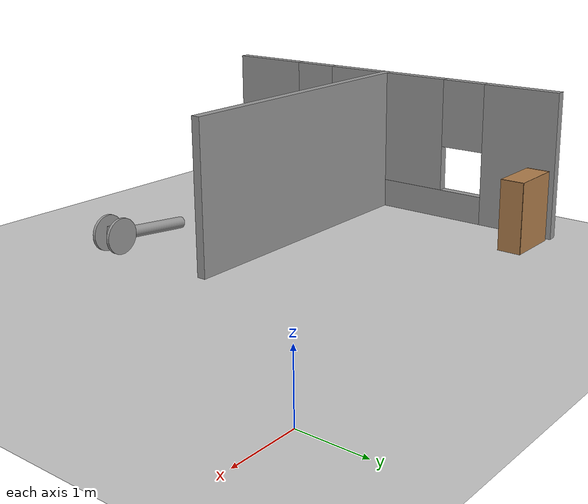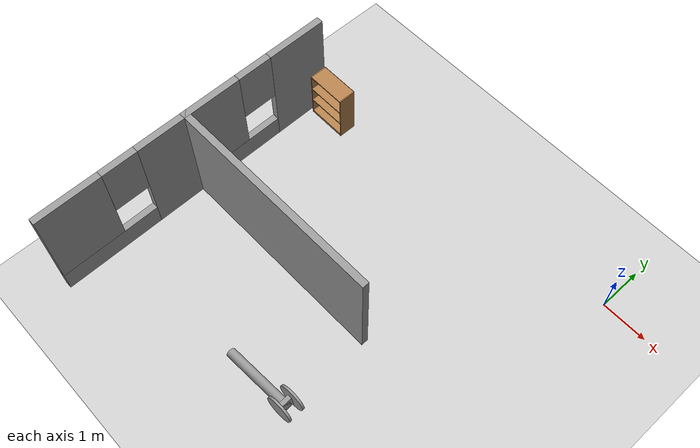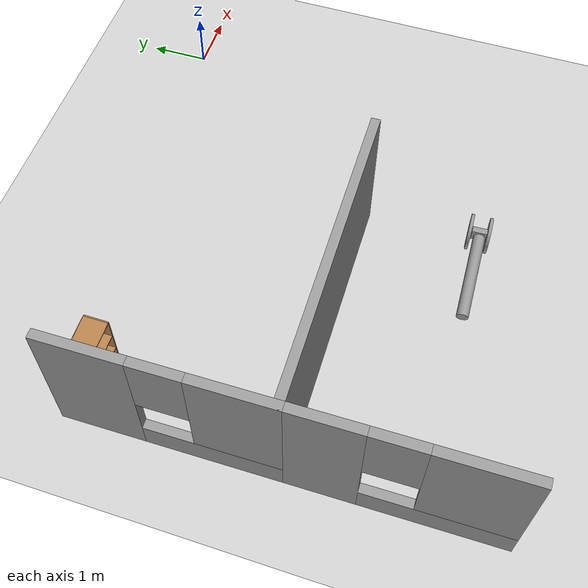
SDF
<sdf version="1.6">
 <world name="default">
  <model name="ground_plane">
   <static>1</static>
   <link name="link">
    <collision name="collision">
     <geometry><plane><normal>0 0 1</normal><size>100 100</size></plane></geometry>
     <surface>
      <contact><collide_bitmask>65535</collide_bitmask></contact>
      <friction><ode><mu>100</mu><mu2>50</mu2></ode></friction>
     </surface>
    </collision>
    <visual name="visual">
     <cast_shadows>0</cast_shadows>
     <geometry><plane><normal>0 0 1</normal><size>100 100</size></plane></geometry>
     <material>
      <script><uri>file://media/materials/scripts/gazebo.material</uri><name>Gazebo/Grey</name></script>
     </material>
    </visual>
   </link>
  </model>
  <model name="Robo-Space.sdf">
   <link name="Wall_1">
    <pose>-6.55 1.675 0 0 0 -1.5708</pose>
    <visual name="Wall_1_Visual_0">
     <pose>-1.0675 0 1.25 0 -0 0</pose>
     <geometry><box><size>1.365 0.15 2.5</size></box></geometry>
     <material>
      <script><uri>file://media/materials/scripts/gazebo.material</uri><name>Gazebo/Grey</name></script>
      <ambient>1 1 1 1</ambient>
      <shader type="pixel"/>
      <diffuse>0.7 0.7 0.7 1</diffuse>
      <specular>0.01 0.01 0.01 1</specular>
      <emissive>0 0 0 1</emissive>
     </material>
     <meta><layer>0</layer></meta>
    </visual>
    <visual name="Wall_1_Visual_1">
     <pose>0.6825 0 0.25 0 -0 0</pose>
     <geometry><box><size>2.135 0.15 0.5</size></box></geometry>
     <material>
      <script><uri>file://media/materials/scripts/gazebo.material</uri><name>Gazebo/Grey</name></script>
      <ambient>1 1 1 1</ambient>
      <shader type="pixel"/>
      <diffuse>0.7 0.7 0.7 1</diffuse>
      <specular>0.01 0.01 0.01 1</specular>
      <emissive>0 0 0 1</emissive>
     </material>
     <meta><layer>0</layer></meta>
    </visual>
    <visual name="Wall_1_Visual_2">
     <pose>1.0825 0 1.5 0 -0 0</pose>
     <geometry><box><size>1.335 0.15 2</size></box></geometry>
     <material>
      <script><uri>file://media/materials/scripts/gazebo.material</uri><name>Gazebo/Grey</name></script>
      <ambient>1 1 1 1</ambient>
      <shader type="pixel"/>
      <diffuse>0.7 0.7 0.7 1</diffuse>
      <specular>0.01 0.01 0.01 1</specular>
      <emissive>0 0 0 1</emissive>
     </material>
     <meta><layer>0</layer></meta>
    </visual>
    <visual name="Wall_1_Visual_3">
     <pose>0.015 0 1.9 0 -0 0</pose>
     <geometry><box><size>0.8 0.15 1.2</size></box></geometry>
     <material>
      <script><uri>file://media/materials/scripts/gazebo.material</uri><name>Gazebo/Grey</name></script>
      <ambient>1 1 1 1</ambient>
      <shader type="pixel"/>
      <diffuse>0.7 0.7 0.7 1</diffuse>
      <specular>0.01 0.01 0.01 1</specular>
      <emissive>0 0 0 1</emissive>
     </material>
     <meta><layer>0</layer></meta>
    </visual>
    <collision name="Wall_1_Collision_0">
     <pose>-1.0675 0 1.25 0 -0 0</pose>
     <geometry><box><size>1.365 0.15 2.5</size></box></geometry>
     <surface>
      <friction>
       <ode><mu>1</mu><mu2>1</mu2><fdir1>0 0 0</fdir1><slip1>0</slip1><slip2>0</slip2></ode>
       <torsional>
        <coefficient>1</coefficient>
        <patch_radius>0</patch_radius>
        <surface_radius>0</surface_radius>
        <use_patch_radius>1</use_patch_radius>
        <ode><slip>0</slip></ode>
       </torsional>
      </friction>
      <bounce><restitution_coefficient>0</restitution_coefficient><threshold>1e+06</threshold></bounce>
      <contact>
       <collide_without_contact>0</collide_without_contact>
       <collide_without_contact_bitmask>1</collide_without_contact_bitmask>
       <collide_bitmask>1</collide_bitmask>
       <ode>
        <soft_cfm>0</soft_cfm>
        <soft_erp>0.2</soft_erp>
        <kp>1e+13</kp>
        <kd>1</kd>
        <max_vel>0.01</max_vel>
        <min_depth>0</min_depth>
       </ode>
       <bullet>
        <split_impulse>1</split_impulse>
        <split_impulse_penetration_threshold>-0.01</split_impulse_penetration_threshold>
        <soft_cfm>0</soft_cfm>
        <soft_erp>0.2</soft_erp>
        <kp>1e+13</kp>
        <kd>1</kd>
       </bullet>
      </contact>
     </surface>
    </collision>
    <collision name="Wall_1_Collision_1">
     <pose>0.6825 0 0.25 0 -0 0</pose>
     <geometry><box><size>2.135 0.15 0.5</size></box></geometry>
     <surface>
      <friction>
       <ode><mu>1</mu><mu2>1</mu2><fdir1>0 0 0</fdir1><slip1>0</slip1><slip2>0</slip2></ode>
       <torsional>
        <coefficient>1</coefficient>
        <patch_radius>0</patch_radius>
        <surface_radius>0</surface_radius>
        <use_patch_radius>1</use_patch_radius>
        <ode><slip>0</slip></ode>
       </torsional>
      </friction>
      <bounce><restitution_coefficient>0</restitution_coefficient><threshold>1e+06</threshold></bounce>
      <contact>
       <collide_without_contact>0</collide_without_contact>
       <collide_without_contact_bitmask>1</collide_without_contact_bitmask>
       <collide_bitmask>1</collide_bitmask>
       <ode>
        <soft_cfm>0</soft_cfm>
        <soft_erp>0.2</soft_erp>
        <kp>1e+13</kp>
        <kd>1</kd>
        <max_vel>0.01</max_vel>
        <min_depth>0</min_depth>
       </ode>
       <bullet>
        <split_impulse>1</split_impulse>
        <split_impulse_penetration_threshold>-0.01</split_impulse_penetration_threshold>
        <soft_cfm>0</soft_cfm>
        <soft_erp>0.2</soft_erp>
        <kp>1e+13</kp>
        <kd>1</kd>
       </bullet>
      </contact>
     </surface>
    </collision>
    <collision name="Wall_1_Collision_2">
     <pose>1.0825 0 1.5 0 -0 0</pose>
     <geometry><box><size>1.335 0.15 2</size></box></geometry>
     <surface>
      <friction>
       <ode><mu>1</mu><mu2>1</mu2><fdir1>0 0 0</fdir1><slip1>0</slip1><slip2>0</slip2></ode>
       <torsional>
        <coefficient>1</coefficient>
        <patch_radius>0</patch_radius>
        <surface_radius>0</surface_radius>
        <use_patch_radius>1</use_patch_radius>
        <ode><slip>0</slip></ode>
       </torsional>
      </friction>
      <bounce><restitution_coefficient>0</restitution_coefficient><threshold>1e+06</threshold></bounce>
      <contact>
       <collide_without_contact>0</collide_without_contact>
       <collide_without_contact_bitmask>1</collide_without_contact_bitmask>
       <collide_bitmask>1</collide_bitmask>
       <ode>
        <soft_cfm>0</soft_cfm>
        <soft_erp>0.2</soft_erp>
        <kp>1e+13</kp>
        <kd>1</kd>
        <max_vel>0.01</max_vel>
        <min_depth>0</min_depth>
       </ode>
       <bullet>
        <split_impulse>1</split_impulse>
        <split_impulse_penetration_threshold>-0.01</split_impulse_penetration_threshold>
        <soft_cfm>0</soft_cfm>
        <soft_erp>0.2</soft_erp>
        <kp>1e+13</kp>
        <kd>1</kd>
       </bullet>
      </contact>
     </surface>
    </collision>
    <collision name="Wall_1_Collision_3">
     <pose>0.015 0 1.9 0 -0 0</pose>
     <geometry><box><size>0.8 0.15 1.2</size></box></geometry>
     <surface>
      <friction>
       <ode><mu>1</mu><mu2>1</mu2><fdir1>0 0 0</fdir1><slip1>0</slip1><slip2>0</slip2></ode>
       <torsional>
        <coefficient>1</coefficient>
        <patch_radius>0</patch_radius>
        <surface_radius>0</surface_radius>
        <use_patch_radius>1</use_patch_radius>
        <ode><slip>0</slip></ode>
       </torsional>
      </friction>
      <bounce><restitution_coefficient>0</restitution_coefficient><threshold>1e+06</threshold></bounce>
      <contact>
       <collide_without_contact>0</collide_without_contact>
       <collide_without_contact_bitmask>1</collide_without_contact_bitmask>
       <collide_bitmask>1</collide_bitmask>
       <ode>
        <soft_cfm>0</soft_cfm>
        <soft_erp>0.2</soft_erp>
        <kp>1e+13</kp>
        <kd>1</kd>
        <max_vel>0.01</max_vel>
        <min_depth>0</min_depth>
       </ode>
       <bullet>
        <split_impulse>1</split_impulse>
        <split_impulse_penetration_threshold>-0.01</split_impulse_penetration_threshold>
        <soft_cfm>0</soft_cfm>
        <soft_erp>0.2</soft_erp>
        <kp>1e+13</kp>
        <kd>1</kd>
       </bullet>
      </contact>
     </surface>
    </collision>
   </link>
   <link name="Wall_2">
    <pose>-4.125 0 0 0 -0 0</pose>
    <visual name="Wall_2_Visual">
     <pose>0 0 1.25 0 -0 0</pose>
     <geometry><box><size>5 0.15 2.5</size></box></geometry>
     <material>
      <script><uri>file://media/materials/scripts/gazebo.material</uri><name>Gazebo/Grey</name></script>
      <ambient>1 1 1 1</ambient>
      <shader type="pixel"/>
      <diffuse>0.7 0.7 0.7 1</diffuse>
      <specular>0.01 0.01 0.01 1</specular>
      <emissive>0 0 0 1</emissive>
     </material>
     <meta><layer>0</layer></meta>
    </visual>
    <collision name="Wall_2_Collision">
     <pose>0 0 1.25 0 -0 0</pose>
     <geometry><box><size>5 0.15 2.5</size></box></geometry>
     <surface>
      <friction>
       <ode><mu>1</mu><mu2>1</mu2><fdir1>0 0 0</fdir1><slip1>0</slip1><slip2>0</slip2></ode>
       <torsional>
        <coefficient>1</coefficient>
        <patch_radius>0</patch_radius>
        <surface_radius>0</surface_radius>
        <use_patch_radius>1</use_patch_radius>
        <ode><slip>0</slip></ode>
       </torsional>
      </friction>
      <bounce><restitution_coefficient>0</restitution_coefficient><threshold>1e+06</threshold></bounce>
      <contact>
       <collide_without_contact>0</collide_without_contact>
       <collide_without_contact_bitmask>1</collide_without_contact_bitmask>
       <collide_bitmask>1</collide_bitmask>
       <ode>
        <soft_cfm>0</soft_cfm>
        <soft_erp>0.2</soft_erp>
        <kp>1e+13</kp>
        <kd>1</kd>
        <max_vel>0.01</max_vel>
        <min_depth>0</min_depth>
       </ode>
       <bullet>
        <split_impulse>1</split_impulse>
        <split_impulse_penetration_threshold>-0.01</split_impulse_penetration_threshold>
        <soft_cfm>0</soft_cfm>
        <soft_erp>0.2</soft_erp>
        <kp>1e+13</kp>
        <kd>1</kd>
       </bullet>
      </contact>
     </surface>
    </collision>
   </link>
   <link name="Wall_9">
    <pose>-6.55 -1.675 0 0 0 -1.5708</pose>
    <visual name="Wall_9_Visual_0">
     <pose>-1.1275 0 1.25 0 -0 0</pose>
     <geometry><box><size>1.245 0.15 2.5</size></box></geometry>
     <material>
      <script><uri>file://media/materials/scripts/gazebo.material</uri><name>Gazebo/Grey</name></script>
      <ambient>1 1 1 1</ambient>
      <shader type="pixel"/>
      <diffuse>0.7 0.7 0.7 1</diffuse>
      <specular>0.01 0.01 0.01 1</specular>
      <emissive>0 0 0 1</emissive>
     </material>
     <meta><layer>0</layer></meta>
    </visual>
    <visual name="Wall_9_Visual_1">
     <pose>0.6225 0 0.25 0 -0 0</pose>
     <geometry><box><size>2.255 0.15 0.5</size></box></geometry>
     <material>
      <script><uri>file://media/materials/scripts/gazebo.material</uri><name>Gazebo/Grey</name></script>
      <ambient>1 1 1 1</ambient>
      <shader type="pixel"/>
      <diffuse>0.7 0.7 0.7 1</diffuse>
      <specular>0.01 0.01 0.01 1</specular>
      <emissive>0 0 0 1</emissive>
     </material>
     <meta><layer>0</layer></meta>
    </visual>
    <visual name="Wall_9_Visual_2">
     <pose>1.0225 0 1.5 0 -0 0</pose>
     <geometry><box><size>1.455 0.15 2</size></box></geometry>
     <material>
      <script><uri>file://media/materials/scripts/gazebo.material</uri><name>Gazebo/Grey</name></script>
      <ambient>1 1 1 1</ambient>
      <shader type="pixel"/>
      <diffuse>0.7 0.7 0.7 1</diffuse>
      <specular>0.01 0.01 0.01 1</specular>
      <emissive>0 0 0 1</emissive>
     </material>
     <meta><layer>0</layer></meta>
    </visual>
    <visual name="Wall_9_Visual_3">
     <pose>-0.105 0 1.9 0 -0 0</pose>
     <geometry><box><size>0.8 0.15 1.2</size></box></geometry>
     <material>
      <script><uri>file://media/materials/scripts/gazebo.material</uri><name>Gazebo/Grey</name></script>
      <ambient>1 1 1 1</ambient>
      <shader type="pixel"/>
      <diffuse>0.7 0.7 0.7 1</diffuse>
      <specular>0.01 0.01 0.01 1</specular>
      <emissive>0 0 0 1</emissive>
     </material>
     <meta><layer>0</layer></meta>
    </visual>
    <collision name="Wall_9_Collision_0">
     <pose>-1.1275 0 1.25 0 -0 0</pose>
     <geometry><box><size>1.245 0.15 2.5</size></box></geometry>
     <surface>
      <friction>
       <ode><mu>1</mu><mu2>1</mu2><fdir1>0 0 0</fdir1><slip1>0</slip1><slip2>0</slip2></ode>
       <torsional>
        <coefficient>1</coefficient>
        <patch_radius>0</patch_radius>
        <surface_radius>0</surface_radius>
        <use_patch_radius>1</use_patch_radius>
        <ode><slip>0</slip></ode>
       </torsional>
      </friction>
      <bounce><restitution_coefficient>0</restitution_coefficient><threshold>1e+06</threshold></bounce>
      <contact>
       <collide_without_contact>0</collide_without_contact>
       <collide_without_contact_bitmask>1</collide_without_contact_bitmask>
       <collide_bitmask>1</collide_bitmask>
       <ode>
        <soft_cfm>0</soft_cfm>
        <soft_erp>0.2</soft_erp>
        <kp>1e+13</kp>
        <kd>1</kd>
        <max_vel>0.01</max_vel>
        <min_depth>0</min_depth>
       </ode>
       <bullet>
        <split_impulse>1</split_impulse>
        <split_impulse_penetration_threshold>-0.01</split_impulse_penetration_threshold>
        <soft_cfm>0</soft_cfm>
        <soft_erp>0.2</soft_erp>
        <kp>1e+13</kp>
        <kd>1</kd>
       </bullet>
      </contact>
     </surface>
    </collision>
    <collision name="Wall_9_Collision_1">
     <pose>0.6225 0 0.25 0 -0 0</pose>
     <geometry><box><size>2.255 0.15 0.5</size></box></geometry>
     <surface>
      <friction>
       <ode><mu>1</mu><mu2>1</mu2><fdir1>0 0 0</fdir1><slip1>0</slip1><slip2>0</slip2></ode>
       <torsional>
        <coefficient>1</coefficient>
        <patch_radius>0</patch_radius>
        <surface_radius>0</surface_radius>
        <use_patch_radius>1</use_patch_radius>
        <ode><slip>0</slip></ode>
       </torsional>
      </friction>
      <bounce><restitution_coefficient>0</restitution_coefficient><threshold>1e+06</threshold></bounce>
      <contact>
       <collide_without_contact>0</collide_without_contact>
       <collide_without_contact_bitmask>1</collide_without_contact_bitmask>
       <collide_bitmask>1</collide_bitmask>
       <ode>
        <soft_cfm>0</soft_cfm>
        <soft_erp>0.2</soft_erp>
        <kp>1e+13</kp>
        <kd>1</kd>
        <max_vel>0.01</max_vel>
        <min_depth>0</min_depth>
       </ode>
       <bullet>
        <split_impulse>1</split_impulse>
        <split_impulse_penetration_threshold>-0.01</split_impulse_penetration_threshold>
        <soft_cfm>0</soft_cfm>
        <soft_erp>0.2</soft_erp>
        <kp>1e+13</kp>
        <kd>1</kd>
       </bullet>
      </contact>
     </surface>
    </collision>
    <collision name="Wall_9_Collision_2">
     <pose>1.0225 0 1.5 0 -0 0</pose>
     <geometry><box><size>1.455 0.15 2</size></box></geometry>
     <surface>
      <friction>
       <ode><mu>1</mu><mu2>1</mu2><fdir1>0 0 0</fdir1><slip1>0</slip1><slip2>0</slip2></ode>
       <torsional>
        <coefficient>1</coefficient>
        <patch_radius>0</patch_radius>
        <surface_radius>0</surface_radius>
        <use_patch_radius>1</use_patch_radius>
        <ode><slip>0</slip></ode>
       </torsional>
      </friction>
      <bounce><restitution_coefficient>0</restitution_coefficient><threshold>1e+06</threshold></bounce>
      <contact>
       <collide_without_contact>0</collide_without_contact>
       <collide_without_contact_bitmask>1</collide_without_contact_bitmask>
       <collide_bitmask>1</collide_bitmask>
       <ode>
        <soft_cfm>0</soft_cfm>
        <soft_erp>0.2</soft_erp>
        <kp>1e+13</kp>
        <kd>1</kd>
        <max_vel>0.01</max_vel>
        <min_depth>0</min_depth>
       </ode>
       <bullet>
        <split_impulse>1</split_impulse>
        <split_impulse_penetration_threshold>-0.01</split_impulse_penetration_threshold>
        <soft_cfm>0</soft_cfm>
        <soft_erp>0.2</soft_erp>
        <kp>1e+13</kp>
        <kd>1</kd>
       </bullet>
      </contact>
     </surface>
    </collision>
    <collision name="Wall_9_Collision_3">
     <pose>-0.105 0 1.9 0 -0 0</pose>
     <geometry><box><size>0.8 0.15 1.2</size></box></geometry>
     <surface>
      <friction>
       <ode><mu>1</mu><mu2>1</mu2><fdir1>0 0 0</fdir1><slip1>0</slip1><slip2>0</slip2></ode>
       <torsional>
        <coefficient>1</coefficient>
        <patch_radius>0</patch_radius>
        <surface_radius>0</surface_radius>
        <use_patch_radius>1</use_patch_radius>
        <ode><slip>0</slip></ode>
       </torsional>
      </friction>
      <bounce><restitution_coefficient>0</restitution_coefficient><threshold>1e+06</threshold></bounce>
      <contact>
       <collide_without_contact>0</collide_without_contact>
       <collide_without_contact_bitmask>1</collide_without_contact_bitmask>
       <collide_bitmask>1</collide_bitmask>
       <ode>
        <soft_cfm>0</soft_cfm>
        <soft_erp>0.2</soft_erp>
        <kp>1e+13</kp>
        <kd>1</kd>
        <max_vel>0.01</max_vel>
        <min_depth>0</min_depth>
       </ode>
       <bullet>
        <split_impulse>1</split_impulse>
        <split_impulse_penetration_threshold>-0.01</split_impulse_penetration_threshold>
        <soft_cfm>0</soft_cfm>
        <soft_erp>0.2</soft_erp>
        <kp>1e+13</kp>
        <kd>1</kd>
       </bullet>
      </contact>
     </surface>
    </collision>
   </link>
   <static>1</static>
   <pose>-0.980002 -3.96999 0 0 -0 0.01242</pose>
  </model>
  <model name="bookshelf">
   <static>1</static>
   <link name="link">
    <inertial><mass>1</mass></inertial>
    <collision name="back">
     <pose>0 0.005 0.6 0 -0 0</pose>
     <geometry><box><size>0.9 0.01 1.2</size></box></geometry>
    </collision>
    <visual name="visual1">
     <pose>0 0.005 0.6 0 -0 0</pose>
     <geometry><box><size>0.9 0.01 1.2</size></box></geometry>
     <material>
      <script><uri>file://media/materials/scripts/gazebo.material</uri><name>Gazebo/Wood</name></script>
     </material>
    </visual>
    <collision name="left_side">
     <pose>0.45 -0.195 0.6 0 -0 0</pose>
     <geometry><box><size>0.02 0.4 1.2</size></box></geometry>
    </collision>
    <visual name="visual2">
     <pose>0.45 -0.195 0.6 0 -0 0</pose>
     <geometry><box><size>0.02 0.4 1.2</size></box></geometry>
     <material>
      <script><uri>file://media/materials/scripts/gazebo.material</uri><name>Gazebo/Wood</name></script>
     </material>
    </visual>
    <collision name="right_side">
     <pose>-0.45 -0.195 0.6 0 -0 0</pose>
     <geometry><box><size>0.02 0.4 1.2</size></box></geometry>
    </collision>
    <visual name="visual3">
     <pose>-0.45 -0.195 0.6 0 -0 0</pose>
     <geometry><box><size>0.02 0.4 1.2</size></box></geometry>
     <material>
      <script><uri>file://media/materials/scripts/gazebo.material</uri><name>Gazebo/Wood</name></script>
     </material>
    </visual>
    <collision name="bottom">
     <pose>0 -0.195 0.03 0 -0 0</pose>
     <geometry><box><size>0.88 0.4 0.06</size></box></geometry>
    </collision>
    <visual name="visual4">
     <pose>0 -0.195 0.03 0 -0 0</pose>
     <geometry><box><size>0.88 0.4 0.06</size></box></geometry>
     <material>
      <script><uri>file://media/materials/scripts/gazebo.material</uri><name>Gazebo/Wood</name></script>
     </material>
    </visual>
    <collision name="top">
     <pose>0 -0.195 1.19 0 -0 0</pose>
     <geometry><box><size>0.88 0.4 0.02</size></box></geometry>
    </collision>
    <visual name="visual5">
     <pose>0 -0.195 1.19 0 -0 0</pose>
     <geometry><box><size>0.88 0.4 0.02</size></box></geometry>
     <material>
      <script><uri>file://media/materials/scripts/gazebo.material</uri><name>Gazebo/Wood</name></script>
     </material>
    </visual>
    <collision name="low_shelf">
     <pose>0 -0.195 0.43 0 -0 0</pose>
     <geometry><box><size>0.88 0.4 0.02</size></box></geometry>
    </collision>
    <visual name="visual6">
     <pose>0 -0.195 0.43 0 -0 0</pose>
     <geometry><box><size>0.88 0.4 0.02</size></box></geometry>
     <material>
      <script><uri>file://media/materials/scripts/gazebo.material</uri><name>Gazebo/Wood</name></script>
     </material>
    </visual>
    <collision name="high_shelf">
     <pose>0 -0.195 0.8 0 -0 0</pose>
     <geometry><box><size>0.88 0.4 0.02</size></box></geometry>
    </collision>
    <visual name="visual7">
     <pose>0 -0.195 0.8 0 -0 0</pose>
     <geometry><box><size>0.88 0.4 0.02</size></box></geometry>
     <material>
      <script><uri>file://media/materials/scripts/gazebo.material</uri><name>Gazebo/Wood</name></script>
     </material>
    </visual>
   </link>
   <pose>-6.95594 -0.681712 0 0 -0 0</pose>
  </model>
  <model name="Robot-1_clone">
   <link name="link_0">
    <pose>-0.000625 -0.000625 -0.1875 0 -0 0</pose>
    <inertial>
     <mass>1</mass>
     <inertia>
      <ixx>0.166667</ixx>
      <ixy>0</ixy>
      <ixz>0</ixz>
      <iyy>0.166667</iyy>
      <iyz>0</iyz>
      <izz>0.166667</izz>
     </inertia>
    </inertial>
    <visual name="visual">
     <geometry><box><size>0.25 0.25 0.1</size></box></geometry>
     <material>
      <lighting>1</lighting>
      <script><uri>file://media/materials/scripts/gazebo.material</uri><name>Gazebo/Grey</name></script>
      <shader type="pixel"><normal_map>__default__</normal_map></shader>
      <ambient>0.3 0.3 0.3 1</ambient>
      <diffuse>0.7 0.7 0.7 1</diffuse>
      <specular>0.01 0.01 0.01 1</specular>
      <emissive>0 0 0 1</emissive>
     </material>
    </visual>
    <collision name="collision">
     <geometry><box><size>0.25 0.25 0.1</size></box></geometry>
     <surface>
      <friction>
       <ode><mu>1</mu><mu2>1</mu2><fdir1>0 0 0</fdir1><slip1>0</slip1><slip2>0</slip2></ode>
       <torsional>
        <coefficient>1</coefficient>
        <patch_radius>0</patch_radius>
        <surface_radius>0</surface_radius>
        <use_patch_radius>1</use_patch_radius>
        <ode><slip>0</slip></ode>
       </torsional>
      </friction>
      <bounce><restitution_coefficient>0</restitution_coefficient><threshold>1e+06</threshold></bounce>
      <contact>
       <collide_without_contact>0</collide_without_contact>
       <collide_without_contact_bitmask>1</collide_without_contact_bitmask>
       <collide_bitmask>1</collide_bitmask>
       <ode>
        <soft_cfm>0</soft_cfm>
        <soft_erp>0.2</soft_erp>
        <kp>1e+13</kp>
        <kd>1</kd>
        <max_vel>0.01</max_vel>
        <min_depth>0</min_depth>
       </ode>
       <bullet>
        <split_impulse>1</split_impulse>
        <split_impulse_penetration_threshold>-0.01</split_impulse_penetration_threshold>
        <soft_cfm>0</soft_cfm>
        <soft_erp>0.2</soft_erp>
        <kp>1e+13</kp>
        <kd>1</kd>
       </bullet>
      </contact>
     </surface>
    </collision>
   </link>
   <link name="link_1_clone">
    <pose>0.006875 -0.150654 -0.1875 1.5707 -0 0</pose>
    <inertial>
     <mass>1</mass>
     <inertia><ixx>0.145833</ixx><ixy>0</ixy><ixz>0</ixz><iyy>0.145833</iyy><iyz>0</iyz><izz>0.125</izz></inertia>
    </inertial>
    <visual name="visual">
     <geometry><cylinder><radius>0.3</radius><length>0.05</length></cylinder></geometry>
     <material>
      <lighting>1</lighting>
      <script><uri>file://media/materials/scripts/gazebo.material</uri><name>Gazebo/Grey</name></script>
      <shader type="pixel"><normal_map>__default__</normal_map></shader>
      <ambient>0.3 0.3 0.3 1</ambient>
      <diffuse>0.7 0.7 0.7 1</diffuse>
      <specular>0.01 0.01 0.01 1</specular>
      <emissive>0 0 0 1</emissive>
     </material>
    </visual>
    <collision name="collision">
     <geometry><cylinder><radius>0.3</radius><length>0.05</length></cylinder></geometry>
     <surface>
      <friction>
       <ode><mu>1</mu><mu2>1</mu2><fdir1>0 0 0</fdir1><slip1>0</slip1><slip2>0</slip2></ode>
       <torsional>
        <coefficient>1</coefficient>
        <patch_radius>0</patch_radius>
        <surface_radius>0</surface_radius>
        <use_patch_radius>1</use_patch_radius>
        <ode><slip>0</slip></ode>
       </torsional>
      </friction>
      <bounce><restitution_coefficient>0</restitution_coefficient><threshold>1e+06</threshold></bounce>
      <contact>
       <collide_without_contact>0</collide_without_contact>
       <collide_without_contact_bitmask>1</collide_without_contact_bitmask>
       <collide_bitmask>1</collide_bitmask>
       <ode>
        <soft_cfm>0</soft_cfm>
        <soft_erp>0.2</soft_erp>
        <kp>1e+13</kp>
        <kd>1</kd>
        <max_vel>0.01</max_vel>
        <min_depth>0</min_depth>
       </ode>
       <bullet>
        <split_impulse>1</split_impulse>
        <split_impulse_penetration_threshold>-0.01</split_impulse_penetration_threshold>
        <soft_cfm>0</soft_cfm>
        <soft_erp>0.2</soft_erp>
        <kp>1e+13</kp>
        <kd>1</kd>
       </bullet>
      </contact>
     </surface>
    </collision>
   </link>
   <link name="link_1_clone_clone">
    <pose>0.006875 0.164404 -0.1875 1.5707 -0 0</pose>
    <inertial>
     <mass>1</mass>
     <inertia><ixx>0.145833</ixx><ixy>0</ixy><ixz>0</ixz><iyy>0.145833</iyy><iyz>0</iyz><izz>0.125</izz></inertia>
    </inertial>
    <visual name="visual">
     <geometry><cylinder><radius>0.3</radius><length>0.05</length></cylinder></geometry>
     <material>
      <lighting>1</lighting>
      <script><uri>file://media/materials/scripts/gazebo.material</uri><name>Gazebo/Grey</name></script>
      <shader type="pixel"><normal_map>__default__</normal_map></shader>
      <ambient>0.3 0.3 0.3 1</ambient>
      <diffuse>0.7 0.7 0.7 1</diffuse>
      <specular>0.01 0.01 0.01 1</specular>
      <emissive>0 0 0 1</emissive>
     </material>
    </visual>
    <collision name="collision">
     <geometry><cylinder><radius>0.3</radius><length>0.05</length></cylinder></geometry>
     <surface>
      <friction>
       <ode><mu>1</mu><mu2>1</mu2><fdir1>0 0 0</fdir1><slip1>0</slip1><slip2>0</slip2></ode>
       <torsional>
        <coefficient>1</coefficient>
        <patch_radius>0</patch_radius>
        <surface_radius>0</surface_radius>
        <use_patch_radius>1</use_patch_radius>
        <ode><slip>0</slip></ode>
       </torsional>
      </friction>
      <bounce><restitution_coefficient>0</restitution_coefficient><threshold>1e+06</threshold></bounce>
      <contact>
       <collide_without_contact>0</collide_without_contact>
       <collide_without_contact_bitmask>1</collide_without_contact_bitmask>
       <collide_bitmask>1</collide_bitmask>
       <ode>
        <soft_cfm>0</soft_cfm>
        <soft_erp>0.2</soft_erp>
        <kp>1e+13</kp>
        <kd>1</kd>
        <max_vel>0.01</max_vel>
        <min_depth>0</min_depth>
       </ode>
       <bullet>
        <split_impulse>1</split_impulse>
        <split_impulse_penetration_threshold>-0.01</split_impulse_penetration_threshold>
        <soft_cfm>0</soft_cfm>
        <soft_erp>0.2</soft_erp>
        <kp>1e+13</kp>
        <kd>1</kd>
       </bullet>
      </contact>
     </surface>
    </collision>
   </link>
   <link name="link_3">
    <pose>-0.013125 -0.013125 0.5625 0 -0 0</pose>
    <inertial>
     <mass>1</mass>
     <inertia><ixx>0.145833</ixx><ixy>0</ixy><ixz>0</ixz><iyy>0.145833</iyy><iyz>0</iyz><izz>0.125</izz></inertia>
    </inertial>
    <visual name="visual">
     <geometry><cylinder><radius>0.1</radius><length>1.6</length></cylinder></geometry>
     <material>
      <lighting>1</lighting>
      <script><uri>file://media/materials/scripts/gazebo.material</uri><name>Gazebo/Grey</name></script>
      <shader type="pixel"><normal_map>__default__</normal_map></shader>
      <ambient>0.3 0.3 0.3 1</ambient>
      <diffuse>0.7 0.7 0.7 1</diffuse>
      <specular>0.01 0.01 0.01 1</specular>
      <emissive>0 0 0 1</emissive>
     </material>
    </visual>
    <collision name="collision">
     <geometry><cylinder><radius>0.1</radius><length>1.6</length></cylinder></geometry>
     <surface>
      <friction>
       <ode><mu>1</mu><mu2>1</mu2><fdir1>0 0 0</fdir1><slip1>0</slip1><slip2>0</slip2></ode>
       <torsional>
        <coefficient>1</coefficient>
        <patch_radius>0</patch_radius>
        <surface_radius>0</surface_radius>
        <use_patch_radius>1</use_patch_radius>
        <ode><slip>0</slip></ode>
       </torsional>
      </friction>
      <bounce><restitution_coefficient>0</restitution_coefficient><threshold>1e+06</threshold></bounce>
      <contact>
       <collide_without_contact>0</collide_without_contact>
       <collide_without_contact_bitmask>1</collide_without_contact_bitmask>
       <collide_bitmask>1</collide_bitmask>
       <ode>
        <soft_cfm>0</soft_cfm>
        <soft_erp>0.2</soft_erp>
        <kp>1e+13</kp>
        <kd>1</kd>
        <max_vel>0.01</max_vel>
        <min_depth>0</min_depth>
       </ode>
       <bullet>
        <split_impulse>1</split_impulse>
        <split_impulse_penetration_threshold>-0.01</split_impulse_penetration_threshold>
        <soft_cfm>0</soft_cfm>
        <soft_erp>0.2</soft_erp>
        <kp>1e+13</kp>
        <kd>1</kd>
       </bullet>
      </contact>
     </surface>
    </collision>
   </link>
   <joint name="link_0_JOINT_0" type="revolute">
    <parent>link_0</parent>
    <child>link_1_clone</child>
    <axis>
     <xyz>0 0 1</xyz>
     <use_parent_model_frame>0</use_parent_model_frame>
     <limit>
      <lower>-1.79769e+308</lower>
      <upper>1.79769e+308</upper>
      <effort>-1</effort>
      <velocity>-1</velocity>
     </limit>
     <dynamics>
      <spring_reference>0</spring_reference>
      <spring_stiffness>0</spring_stiffness>
      <damping>0</damping>
     </dynamics>
    </axis>
    <physics>
     <ode><limit><cfm>0</cfm><erp>0.2</erp></limit><suspension><cfm>0</cfm><erp>0.2</erp></suspension></ode>
    </physics>
   </joint>
   <joint name="link_0_JOINT_3" type="revolute">
    <parent>link_0</parent>
    <child>link_1_clone_clone</child>
    <axis>
     <xyz>0 0 1</xyz>
     <use_parent_model_frame>0</use_parent_model_frame>
     <limit>
      <lower>-1.79769e+308</lower>
      <upper>1.79769e+308</upper>
      <effort>-1</effort>
      <velocity>-1</velocity>
     </limit>
     <dynamics>
      <spring_reference>0</spring_reference>
      <spring_stiffness>0</spring_stiffness>
      <damping>0</damping>
     </dynamics>
    </axis>
    <physics>
     <ode><limit><cfm>0</cfm><erp>0.2</erp></limit><suspension><cfm>0</cfm><erp>0.2</erp></suspension></ode>
    </physics>
   </joint>
   <joint name="link_0_JOINT_6" type="fixed">
    <parent>link_0</parent>
    <child>link_3</child>
    <physics>
     <ode><limit><cfm>0</cfm><erp>0.2</erp></limit><suspension><cfm>0</cfm><erp>0.2</erp></suspension></ode>
    </physics>
   </joint>
   <static>0</static>
   <pose>-2.80119 -5.95471 0.271298 -3.14156 -1.45387 -3.10383</pose>
  </model>
 </world>
</sdf>
